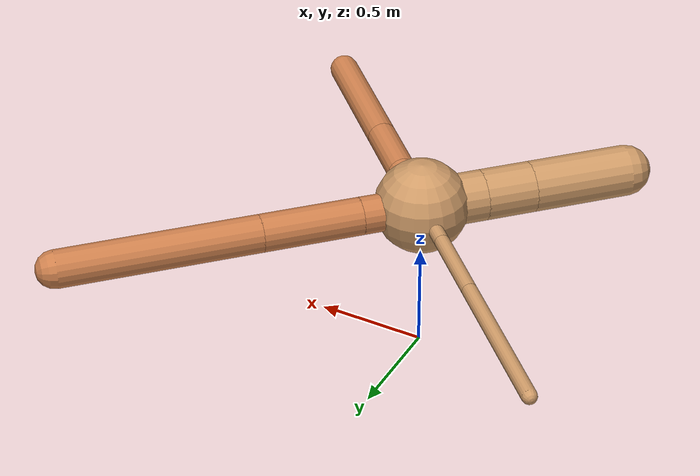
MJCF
<?xml version="1.0" ?>
<mujoco model="ant">

	<compiler angle="degree" coordinate="local" inertiafromgeom="true"/>

	<option integrator="RK4" timestep="0.01"/>

	<custom>

		<numeric data="0.0 0.0 0.55 1.0 0.0 0.0 0.0 0.0 1.0 0.0 -1.0 0.0 -1.0 0.0 1.0" name="init_qpos"/>

	</custom>

	<default>

		<joint armature="1" damping="1" limited="true"/>

		<geom conaffinity="0" condim="3" density="5.0" friction="1.5 0.1 0.1" margin="0.01" rgba="0.8 0.6 0.4 1"/>

	</default>

	<worldbody>

		<body name="torso" pos="0 0 0.75">

			<geom name="torso_geom" pos="0 0 0" size="0.21292429163743123" type="sphere"/>

			<!--joint armature="0" damping="0" limited="false" margin="0.01" name="root" pos="0 0 0" type="free"/-->

			<body name="front_left_leg" pos="0 0 0">

				<geom fromto="0 0 0 0.2 0.2 0" name="aux_1_geom" size="0.08583390903497927" type="capsule" rgba=".8 .5 .3 1"/>

				<body name="aux_1" pos="0.2 0.2 0">

					<joint axis="0 0 1" name="hip_1" pos="0.0 0.0 0.0" range="-40 40" type="hinge"/>

					<geom fromto="0 0 0 0.32121154229360127 0.32121154229360127 0" name="left_leg_geom" size="0.08583390903497927" type="capsule" rgba=".8 .5 .3 1"/>

					<body pos="0.32121154229360127 0.32121154229360127 0" name="front_left_foot">

						<joint axis="-1 1 0" name="ankle_1" pos="0.0 0.0 0.0" range="30 100" type="hinge"/>

						<geom fromto="0 0 0 0.6424230845872025 0.6424230845872025 0" name="left_ankle_geom" size="0.08583390903497927" type="capsule" rgba=".8 .5 .3 1"/>

					</body>

				</body>

			</body>

			<body name="front_right_leg" pos="0 0 0">

				<geom fromto="0 0 0 -0.2 0.2 0" name="aux_2_geom" size="0.03418109636036327" type="capsule"/>

				<body name="aux_2" pos="-0.2 0.2 0">

					<joint axis="0 0 1" name="hip_2" pos="0.0 0.0 0.0" range="-40 40" type="hinge"/>

					<geom fromto="0 0 0 -0.25707272784747437 0.25707272784747437 0" name="right_leg_geom" size="0.03418109636036327" type="capsule"/>

					<body pos="-0.25707272784747437 0.25707272784747437 0" name="front_right_foot">

						<joint axis="1 1 0" name="ankle_2" pos="0.0 0.0 0.0" range="-100 -30" type="hinge"/>

						<geom fromto="0 0 0 -0.5141454556949487 0.5141454556949487 0" name="right_ankle_geom" size="0.03418109636036327" type="capsule"/>

					</body>

				</body>

			</body>

			<body name="left_back_leg" pos="0 0 0">

				<geom fromto="0 0 0 -0.2 -0.2 0" name="aux_3_geom" size="0.1162677665604982" type="capsule"/>

				<body name="aux_3" pos="-0.2 -0.2 0">

					<joint axis="0 0 1" name="hip_3" pos="0.0 0.0 0.0" range="-40 40" type="hinge"/>

					<geom fromto="0 0 0 -0.16127052221881907 -0.16127052221881907 0" name="back_leg_geom" size="0.1162677665604982" type="capsule"/>

					<body pos="-0.16127052221881907 -0.16127052221881907 0" name="left_back_foot">

						<joint axis="-1 1 0" name="ankle_3" pos="0.0 0.0 0.0" range="-100 -30" type="hinge"/>

						<geom fromto="0 0 0 -0.32254104443763815 -0.32254104443763815 0" name="third_ankle_geom" size="0.1162677665604982" type="capsule"/>

					</body>

				</body>

			</body>

			<body name="right_back_leg" pos="0 0 0">

				<geom fromto="0 0 0 0.2 -0.2 0" name="aux_4_geom" size="0.06641918820277794" type="capsule" rgba=".8 .5 .3 1"/>

				<body name="aux_4" pos="0.2 -0.2 0">

					<joint axis="0 0 1" name="hip_4" pos="0.0 0.0 0.0" range="-40 40" type="hinge"/>

					<geom fromto="0 0 0 0.21670556901445345 -0.21670556901445345 0" name="rightback_leg_geom" size="0.06641918820277794" type="capsule" rgba=".8 .5 .3 1"/>

					<body pos="0.21670556901445345 -0.21670556901445345 0" name="right_back_foot">

						<joint axis="1 1 0" name="ankle_4" pos="0.0 0.0 0.0" range="30 100" type="hinge"/>

						<geom fromto="0 0 0 0.4334111380289069 -0.4334111380289069 0" name="fourth_ankle_geom" size="0.06641918820277794" type="capsule" rgba=".8 .5 .3 1"/>

					</body>

				</body>

			</body>

		</body>

	</worldbody>

	<actuator>

		<motor ctrllimited="true" ctrlrange="-1.0 1.0" joint="hip_4" gear="150"/>

		<motor ctrllimited="true" ctrlrange="-1.0 1.0" joint="ankle_4" gear="150"/>

		<motor ctrllimited="true" ctrlrange="-1.0 1.0" joint="hip_1" gear="150"/>

		<motor ctrllimited="true" ctrlrange="-1.0 1.0" joint="ankle_1" gear="150"/>

		<motor ctrllimited="true" ctrlrange="-1.0 1.0" joint="hip_2" gear="150"/>

		<motor ctrllimited="true" ctrlrange="-1.0 1.0" joint="ankle_2" gear="150"/>

		<motor ctrllimited="true" ctrlrange="-1.0 1.0" joint="hip_3" gear="150"/>

		<motor ctrllimited="true" ctrlrange="-1.0 1.0" joint="ankle_3" gear="150"/>

	</actuator>

</mujoco>
